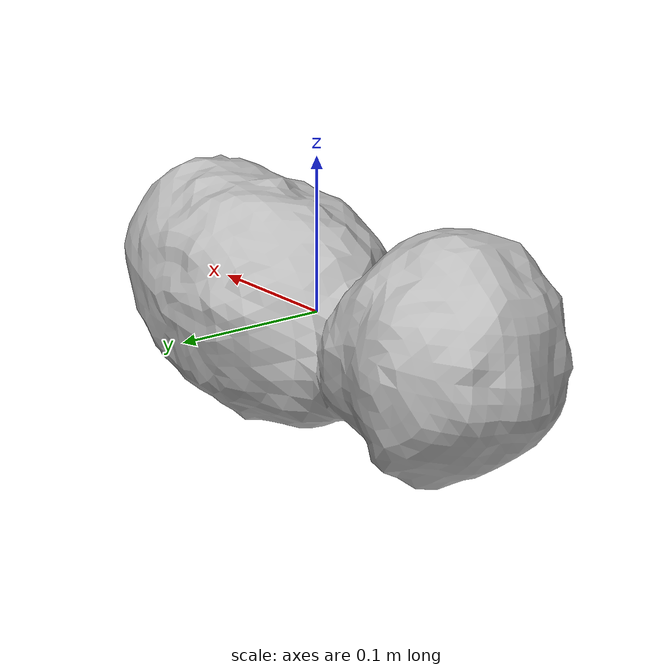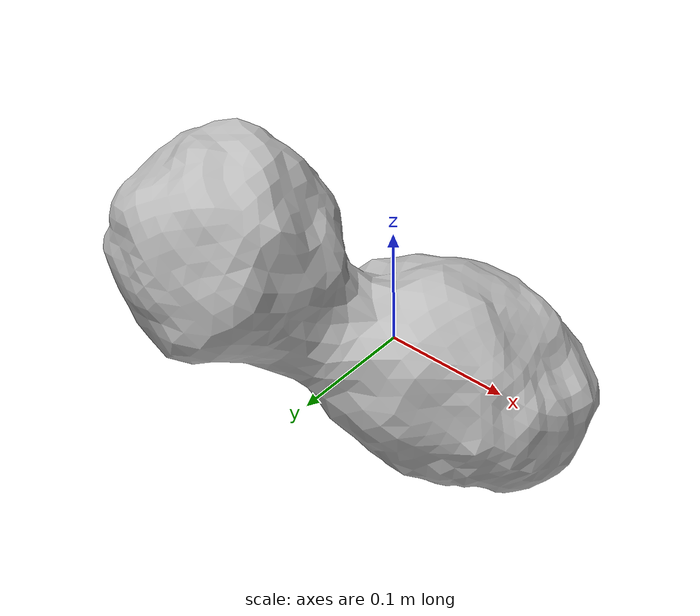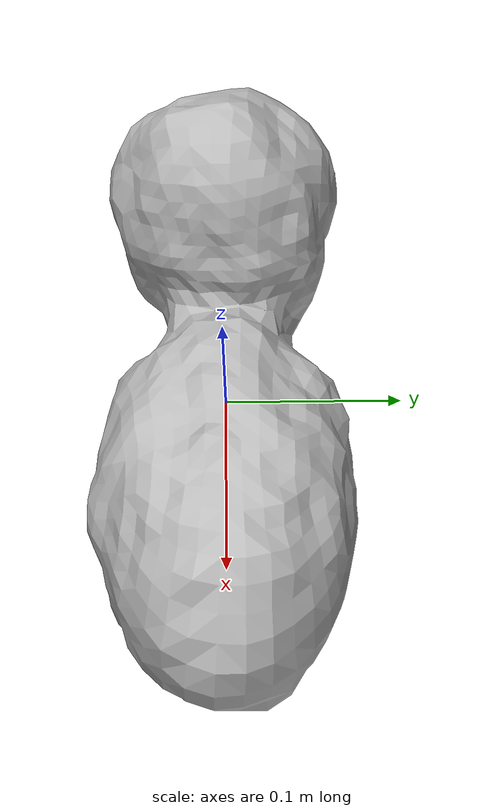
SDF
<?xml version="1.0" ?>
<sdf version='1.7'>
  <model name='obstacle'>
    <pose>0 0 0 0 -0 0</pose>
      <link name='obstacle'>
        <inertial>
          <mass>100</mass>
        </inertial>
        <collision name='peg_collision'>
          <geometry>
            <mesh>
              <uri>meshes/model.dae</uri>
              <scale>0.1 0.1 0.1</scale>
            </mesh>
          </geometry>
          <max_contacts>10</max_contacts>
          <surface>
            <contact>
              <ode>
                <min_depth>0.001</min_depth>
                <maxVel>0.0</maxVel>
              </ode>
            </contact>
            <friction>
              <torsional>
                <ode>
                  <mu1>1.5</mu1>
                  <mu2>1.5</mu2>
                </ode>
              </torsional>
              <ode/>
            </friction>
          </surface>
        </collision>
        <visual name='obstacle_vis'>
          <geometry>
            <mesh>
              <uri>meshes/model.dae</uri>
              <scale>0.1 0.1 0.1</scale>
            </mesh>
          </geometry>
        </visual>
        <pose>0 0 0 0 0 0</pose>
        <self_collide>0</self_collide>
        <enable_wind>0</enable_wind>
        <kinematic>0</kinematic>
      </link>
  </model>
</sdf>
